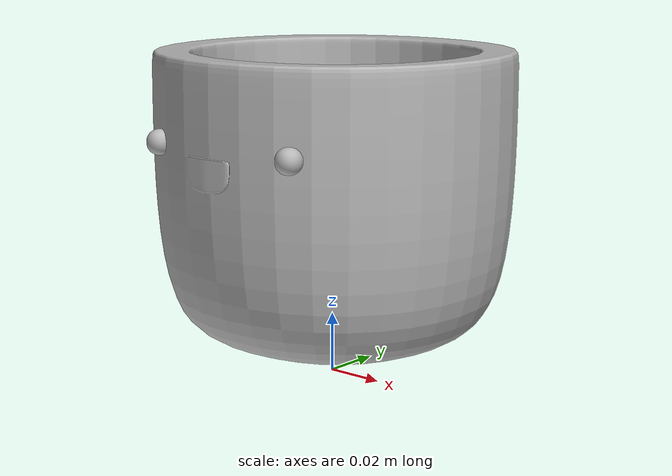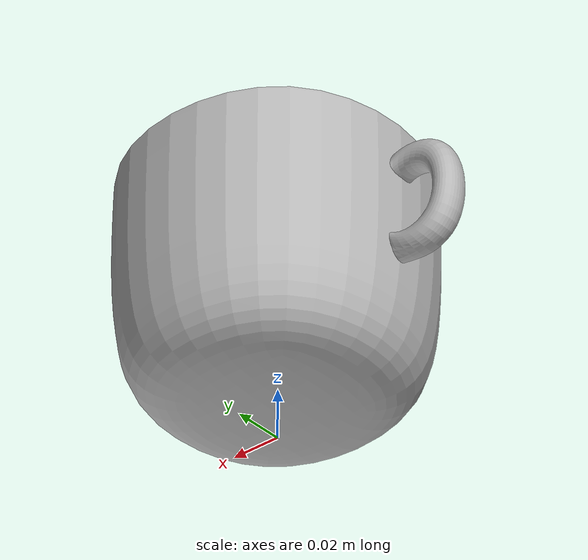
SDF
<?xml version="1.0" ?>
<sdf version="1.5">
  <model name="cute_mug">
    <static>false</static>
    <link name="link">
        <pose>0 0 0.01 0 0 0</pose>
      <inertial>
        <pose>0 0 0 0 0 0</pose>
        <mass>0.1</mass>
        <inertia>
          <ixx>0.0003325</ixx>
          <ixy>0</ixy>
          <ixz>0</ixz>
          <iyy>0.0003325</iyy>
          <iyz>0</iyz>
          <izz>0.00012500000000000003</izz>
        </inertia>
      </inertial>

      <collision name="col_cute_mug">
        <pose>0 0 0 0 0 0</pose>
        <geometry>
          <mesh>
            <uri>model://cute_mug/meshes/cute_mug_col.stl</uri>
          </mesh>
        </geometry>
        <surface>
          <friction>
            <ode>
              <mu>0.01</mu>
              <mu2>0.01</mu2>
            </ode>
          </friction>
          <contact>
            <ode>
              <kp>10000000.0</kp>
              <kd>10000000.0</kd>
              <min_depth>0.001</min_depth>
              <max_vel>1.1</max_vel>
            </ode>
          </contact>
        </surface>
      </collision>

      <visual name="visual_cute_mug">
        <pose>0 0 0 0 0 0</pose>
        <geometry>
          <mesh>
            <uri>model://cute_mug/meshes/cute_mug.dae</uri>
          </mesh>
        </geometry>
      </visual>
    </link>

  </model>
</sdf>
